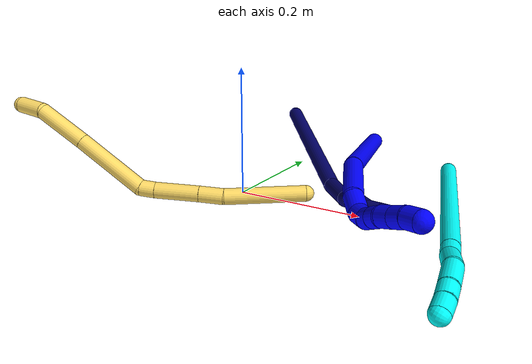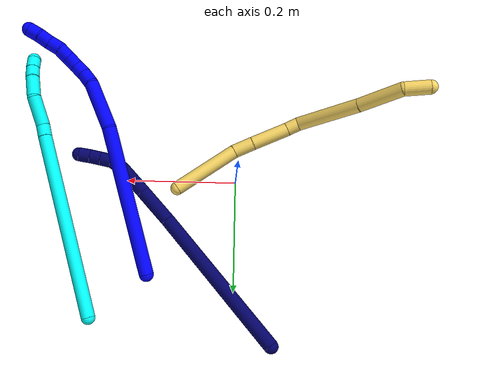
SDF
<sdf version="1.7">
 <world name="default">
  <model name="1">
   <static>0</static>
   <link name="1">
    <collision name="collision-cylinder-e_1_1_4">
     <pose>0.00447 -0.000482 0.129517 0.003721 0.034496 6.4e-05</pose>
     <geometry><cylinder><radius>0.0125</radius><length>0.25919</length></cylinder></geometry>
     <surface>
      <friction><ode><mu>1.16</mu><mu2>1.16</mu2><slip1>0</slip1><slip2>0</slip2></ode></friction>
      <contact><ode><kp>1e+06</kp><kd>1</kd><max_vel>0</max_vel><min_depth>0.001</min_depth></ode></contact>
     </surface>
    </collision>
    <visual name="visual-cylinder-e_1_1_4">
     <pose>0.00447 -0.000482 0.129517 0.003721 0.034496 6.4e-05</pose>
     <geometry><cylinder><radius>0.0125</radius><length>0.25919</length></cylinder></geometry>
     <material><ambient>0 0 1 1</ambient></material>
    </visual>
    <collision name="collision-cylinder-e_2_4_5">
     <pose>0.012758 -0.013114 0.3022 0.274367 0.084952 0.011735</pose>
     <geometry><cylinder><radius>0.0125</radius><length>0.090011</length></cylinder></geometry>
     <surface>
      <friction><ode><mu>1.16</mu><mu2>1.16</mu2><slip1>0</slip1><slip2>0</slip2></ode></friction>
      <contact><ode><kp>1e+06</kp><kd>1</kd><max_vel>0</max_vel><min_depth>0.001</min_depth></ode></contact>
     </surface>
    </collision>
    <visual name="visual-cylinder-e_2_4_5">
     <pose>0.012758 -0.013114 0.3022 0.274367 0.084952 0.011735</pose>
     <geometry><cylinder><radius>0.0125</radius><length>0.090011</length></cylinder></geometry>
     <material><ambient>0 0 1 1</ambient></material>
    </visual>
    <collision name="collision-cylinder-e_3_5_6">
     <pose>0.019145 -0.033209 0.356955 0.600998 0.180781 0.056159</pose>
     <geometry><cylinder><radius>0.0125</radius><length>0.028568</length></cylinder></geometry>
     <surface>
      <friction><ode><mu>1.16</mu><mu2>1.16</mu2><slip1>0</slip1><slip2>0</slip2></ode></friction>
      <contact><ode><kp>1e+06</kp><kd>1</kd><max_vel>0</max_vel><min_depth>0.001</min_depth></ode></contact>
     </surface>
    </collision>
    <visual name="visual-cylinder-e_3_5_6">
     <pose>0.019145 -0.033209 0.356955 0.600998 0.180781 0.056159</pose>
     <geometry><cylinder><radius>0.0125</radius><length>0.028568</length></cylinder></geometry>
     <material><ambient>0 0 1 1</ambient></material>
    </visual>
    <collision name="collision-cylinder-e_4_6_7">
     <pose>0.026951 -0.04354 0.377839 0.251277 0.499605 0.064426</pose>
     <geometry><cylinder><radius>0.0125</radius><length>0.021866</length></cylinder></geometry>
     <surface>
      <friction><ode><mu>1.16</mu><mu2>1.16</mu2><slip1>0</slip1><slip2>0</slip2></ode></friction>
      <contact><ode><kp>1e+06</kp><kd>1</kd><max_vel>0</max_vel><min_depth>0.001</min_depth></ode></contact>
     </surface>
    </collision>
    <visual name="visual-cylinder-e_4_6_7">
     <pose>0.026951 -0.04354 0.377839 0.251277 0.499605 0.064426</pose>
     <geometry><cylinder><radius>0.0125</radius><length>0.021866</length></cylinder></geometry>
     <material><ambient>0 0 1 1</ambient></material>
    </visual>
    <collision name="collision-cylinder-e_5_7_8">
     <pose>0.038068 -0.044754 0.395339 -0.141891 0.616997 -0.045285</pose>
     <geometry><cylinder><radius>0.0125</radius><length>0.020324</length></cylinder></geometry>
     <surface>
      <friction><ode><mu>1.16</mu><mu2>1.16</mu2><slip1>0</slip1><slip2>0</slip2></ode></friction>
      <contact><ode><kp>1e+06</kp><kd>1</kd><max_vel>0</max_vel><min_depth>0.001</min_depth></ode></contact>
     </surface>
    </collision>
    <visual name="visual-cylinder-e_5_7_8">
     <pose>0.038068 -0.044754 0.395339 -0.141891 0.616997 -0.045285</pose>
     <geometry><cylinder><radius>0.0125</radius><length>0.020324</length></cylinder></geometry>
     <material><ambient>0 0 1 1</ambient></material>
    </visual>
    <collision name="collision-cylinder-e_6_8_9">
     <pose>0.049811 -0.0425 0.411586 -0.133756 0.625726 -0.043326</pose>
     <geometry><cylinder><radius>0.0125</radius><length>0.020021</length></cylinder></geometry>
     <surface>
      <friction><ode><mu>1.16</mu><mu2>1.16</mu2><slip1>0</slip1><slip2>0</slip2></ode></friction>
      <contact><ode><kp>1e+06</kp><kd>1</kd><max_vel>0</max_vel><min_depth>0.001</min_depth></ode></contact>
     </surface>
    </collision>
    <visual name="visual-cylinder-e_6_8_9">
     <pose>0.049811 -0.0425 0.411586 -0.133756 0.625726 -0.043326</pose>
     <geometry><cylinder><radius>0.0125</radius><length>0.020021</length></cylinder></geometry>
     <material><ambient>0 0 1 1</ambient></material>
    </visual>
    <collision name="collision-cylinder-e_7_9_10">
     <pose>0.063205 -0.042232 0.426165 0.123794 0.85214 0.056244</pose>
     <geometry><cylinder><radius>0.0125</radius><length>0.020012</length></cylinder></geometry>
     <surface>
      <friction><ode><mu>1.16</mu><mu2>1.16</mu2><slip1>0</slip1><slip2>0</slip2></ode></friction>
      <contact><ode><kp>1e+06</kp><kd>1</kd><max_vel>0</max_vel><min_depth>0.001</min_depth></ode></contact>
     </surface>
    </collision>
    <visual name="visual-cylinder-e_7_9_10">
     <pose>0.063205 -0.042232 0.426165 0.123794 0.85214 0.056244</pose>
     <geometry><cylinder><radius>0.0125</radius><length>0.020012</length></cylinder></geometry>
     <material><ambient>0 0 1 1</ambient></material>
    </visual>
    <collision name="collision-cylinder-e_8_10_11">
     <pose>0.077801 -0.043201 0.439781 0.022027 0.784204 0.009109</pose>
     <geometry><cylinder><radius>0.0125</radius><length>0.020005</length></cylinder></geometry>
     <surface>
      <friction><ode><mu>1.16</mu><mu2>1.16</mu2><slip1>0</slip1><slip2>0</slip2></ode></friction>
      <contact><ode><kp>1e+06</kp><kd>1</kd><max_vel>0</max_vel><min_depth>0.001</min_depth></ode></contact>
     </surface>
    </collision>
    <visual name="visual-cylinder-e_8_10_11">
     <pose>0.077801 -0.043201 0.439781 0.022027 0.784204 0.009109</pose>
     <geometry><cylinder><radius>0.0125</radius><length>0.020005</length></cylinder></geometry>
     <material><ambient>0 0 1 1</ambient></material>
    </visual>
    <collision name="collision-cylinder-e_9_11_2">
     <pose>0.091949 -0.045546 0.453574 0.31519 0.787059 0.131766</pose>
     <geometry><cylinder><radius>0.0125</radius><length>0.020003</length></cylinder></geometry>
     <surface>
      <friction><ode><mu>1.16</mu><mu2>1.16</mu2><slip1>0</slip1><slip2>0</slip2></ode></friction>
      <contact><ode><kp>1e+06</kp><kd>1</kd><max_vel>0</max_vel><min_depth>0.001</min_depth></ode></contact>
     </surface>
    </collision>
    <visual name="visual-cylinder-e_9_11_2">
     <pose>0.091949 -0.045546 0.453574 0.31519 0.787059 0.131766</pose>
     <geometry><cylinder><radius>0.0125</radius><length>0.020003</length></cylinder></geometry>
     <material><ambient>0 0 1 1</ambient></material>
    </visual>
    <collision name="collision-sphere-2">
     <pose>0.099033 -0.047735 0.460286 0 -0 0</pose>
     <geometry><sphere><radius>0.0125</radius></sphere></geometry>
     <surface>
      <friction><ode><mu>1.16</mu><mu2>1.16</mu2><slip1>0</slip1><slip2>0</slip2></ode></friction>
      <contact><ode><kp>1e+06</kp><kd>1</kd><max_vel>0</max_vel><min_depth>0.001</min_depth></ode></contact>
     </surface>
    </collision>
    <visual name="visual-sphere-2">
     <pose>0.099033 -0.047735 0.460286 0 -0 0</pose>
     <geometry><sphere><radius>0.0125</radius></sphere></geometry>
     <material><ambient>0 0 1 1</ambient></material>
    </visual>
    <collision name="collision-sphere-11">
     <pose>0.084866 -0.043357 0.446861 0 -0 0</pose>
     <geometry><sphere><radius>0.0125</radius></sphere></geometry>
     <surface>
      <friction><ode><mu>1.16</mu><mu2>1.16</mu2><slip1>0</slip1><slip2>0</slip2></ode></friction>
      <contact><ode><kp>1e+06</kp><kd>1</kd><max_vel>0</max_vel><min_depth>0.001</min_depth></ode></contact>
     </surface>
    </collision>
    <visual name="visual-sphere-11">
     <pose>0.084866 -0.043357 0.446861 0 -0 0</pose>
     <geometry><sphere><radius>0.0125</radius></sphere></geometry>
     <material><ambient>0 0 1 1</ambient></material>
    </visual>
    <collision name="collision-sphere-10">
     <pose>0.070737 -0.043045 0.432702 0 -0 0</pose>
     <geometry><sphere><radius>0.0125</radius></sphere></geometry>
     <surface>
      <friction><ode><mu>1.16</mu><mu2>1.16</mu2><slip1>0</slip1><slip2>0</slip2></ode></friction>
      <contact><ode><kp>1e+06</kp><kd>1</kd><max_vel>0</max_vel><min_depth>0.001</min_depth></ode></contact>
     </surface>
    </collision>
    <visual name="visual-sphere-10">
     <pose>0.070737 -0.043045 0.432702 0 -0 0</pose>
     <geometry><sphere><radius>0.0125</radius></sphere></geometry>
     <material><ambient>0 0 1 1</ambient></material>
    </visual>
    <collision name="collision-sphere-9">
     <pose>0.055674 -0.041418 0.419627 0 -0 0</pose>
     <geometry><sphere><radius>0.0125</radius></sphere></geometry>
     <surface>
      <friction><ode><mu>1.16</mu><mu2>1.16</mu2><slip1>0</slip1><slip2>0</slip2></ode></friction>
      <contact><ode><kp>1e+06</kp><kd>1</kd><max_vel>0</max_vel><min_depth>0.001</min_depth></ode></contact>
     </surface>
    </collision>
    <visual name="visual-sphere-9">
     <pose>0.055674 -0.041418 0.419627 0 -0 0</pose>
     <geometry><sphere><radius>0.0125</radius></sphere></geometry>
     <material><ambient>0 0 1 1</ambient></material>
    </visual>
    <collision name="collision-sphere-4">
     <pose>0.008939 -0.000964 0.259034 0 -0 0</pose>
     <geometry><sphere><radius>0.0125</radius></sphere></geometry>
     <surface>
      <friction><ode><mu>1.16</mu><mu2>1.16</mu2><slip1>0</slip1><slip2>0</slip2></ode></friction>
      <contact><ode><kp>1e+06</kp><kd>1</kd><max_vel>0</max_vel><min_depth>0.001</min_depth></ode></contact>
     </surface>
    </collision>
    <visual name="visual-sphere-4">
     <pose>0.008939 -0.000964 0.259034 0 -0 0</pose>
     <geometry><sphere><radius>0.0125</radius></sphere></geometry>
     <material><ambient>0 0 1 1</ambient></material>
    </visual>
    <collision name="collision-sphere-1">
     <geometry><sphere><radius>0.0125</radius></sphere></geometry>
     <surface>
      <friction><ode><mu>1.16</mu><mu2>1.16</mu2><slip1>0</slip1><slip2>0</slip2></ode></friction>
      <contact><ode><kp>1e+06</kp><kd>1</kd><max_vel>0</max_vel><min_depth>0.001</min_depth></ode></contact>
     </surface>
    </collision>
    <visual name="visual-sphere-1">
     <geometry><sphere><radius>0.0125</radius></sphere></geometry>
     <material><ambient>0 0 1 1</ambient></material>
    </visual>
    <collision name="collision-sphere-8">
     <pose>0.043948 -0.043582 0.403544 0 -0 0</pose>
     <geometry><sphere><radius>0.0125</radius></sphere></geometry>
     <surface>
      <friction><ode><mu>1.16</mu><mu2>1.16</mu2><slip1>0</slip1><slip2>0</slip2></ode></friction>
      <contact><ode><kp>1e+06</kp><kd>1</kd><max_vel>0</max_vel><min_depth>0.001</min_depth></ode></contact>
     </surface>
    </collision>
    <visual name="visual-sphere-8">
     <pose>0.043948 -0.043582 0.403544 0 -0 0</pose>
     <geometry><sphere><radius>0.0125</radius></sphere></geometry>
     <material><ambient>0 0 1 1</ambient></material>
    </visual>
    <collision name="collision-sphere-5">
     <pose>0.016577 -0.025263 0.345366 0 -0 0</pose>
     <geometry><sphere><radius>0.0125</radius></sphere></geometry>
     <surface>
      <friction><ode><mu>1.16</mu><mu2>1.16</mu2><slip1>0</slip1><slip2>0</slip2></ode></friction>
      <contact><ode><kp>1e+06</kp><kd>1</kd><max_vel>0</max_vel><min_depth>0.001</min_depth></ode></contact>
     </surface>
    </collision>
    <visual name="visual-sphere-5">
     <pose>0.016577 -0.025263 0.345366 0 -0 0</pose>
     <geometry><sphere><radius>0.0125</radius></sphere></geometry>
     <material><ambient>0 0 1 1</ambient></material>
    </visual>
    <collision name="collision-sphere-6">
     <pose>0.021713 -0.041154 0.368544 0 -0 0</pose>
     <geometry><sphere><radius>0.0125</radius></sphere></geometry>
     <surface>
      <friction><ode><mu>1.16</mu><mu2>1.16</mu2><slip1>0</slip1><slip2>0</slip2></ode></friction>
      <contact><ode><kp>1e+06</kp><kd>1</kd><max_vel>0</max_vel><min_depth>0.001</min_depth></ode></contact>
     </surface>
    </collision>
    <visual name="visual-sphere-6">
     <pose>0.021713 -0.041154 0.368544 0 -0 0</pose>
     <geometry><sphere><radius>0.0125</radius></sphere></geometry>
     <material><ambient>0 0 1 1</ambient></material>
    </visual>
    <collision name="collision-sphere-7">
     <pose>0.032188 -0.045927 0.387134 0 -0 0</pose>
     <geometry><sphere><radius>0.0125</radius></sphere></geometry>
     <surface>
      <friction><ode><mu>1.16</mu><mu2>1.16</mu2><slip1>0</slip1><slip2>0</slip2></ode></friction>
      <contact><ode><kp>1e+06</kp><kd>1</kd><max_vel>0</max_vel><min_depth>0.001</min_depth></ode></contact>
     </surface>
    </collision>
    <visual name="visual-sphere-7">
     <pose>0.032188 -0.045927 0.387134 0 -0 0</pose>
     <geometry><sphere><radius>0.0125</radius></sphere></geometry>
     <material><ambient>0 0 1 1</ambient></material>
    </visual>
    <inertial>
     <pose>0.019749 -0.015174 0.243809 0 -0 0</pose>
     <mass>0.5</mass>
     <inertia><ixx>0.001543</ixx><ixy>0</ixy><ixz>0</ixz><iyy>0.001532</iyy><iyz>0</iyz><izz>-1e-06</izz></inertia>
    </inertial>
   </link>
   <pose>0.149999 0.173331 0.066318 1.44043 -0.37598 0.294146</pose>
  </model>
  <model name="3">
   <static>0</static>
   <link name="3">
    <collision name="collision-cylinder-e_1_1_4">
     <pose>-0.015873 -0.158498 0.060982 1.20351 -0.093195 -0.064023</pose>
     <geometry><cylinder><radius>0.0125</radius><length>0.341129</length></cylinder></geometry>
     <surface>
      <friction><ode><mu>1.16</mu><mu2>1.16</mu2><slip1>0</slip1><slip2>0</slip2></ode></friction>
      <contact><ode><kp>1e+06</kp><kd>1</kd><max_vel>0</max_vel><min_depth>0.001</min_depth></ode></contact>
     </surface>
    </collision>
    <visual name="visual-cylinder-e_1_1_4">
     <pose>-0.015873 -0.158498 0.060982 1.20351 -0.093195 -0.064023</pose>
     <geometry><cylinder><radius>0.0125</radius><length>0.341129</length></cylinder></geometry>
     <material><ambient>0.003922 1 0.996078 1</ambient></material>
    </visual>
    <collision name="collision-cylinder-e_2_4_5">
     <pose>-0.032137 -0.327615 0.125755 1.22786 -0.034684 -0.024446</pose>
     <geometry><cylinder><radius>0.0125</radius><length>0.022564</length></cylinder></geometry>
     <surface>
      <friction><ode><mu>1.16</mu><mu2>1.16</mu2><slip1>0</slip1><slip2>0</slip2></ode></friction>
      <contact><ode><kp>1e+06</kp><kd>1</kd><max_vel>0</max_vel><min_depth>0.001</min_depth></ode></contact>
     </surface>
    </collision>
    <visual name="visual-cylinder-e_2_4_5">
     <pose>-0.032137 -0.327615 0.125755 1.22786 -0.034684 -0.024446</pose>
     <geometry><cylinder><radius>0.0125</radius><length>0.022564</length></cylinder></geometry>
     <material><ambient>0.003922 1 0.996078 1</ambient></material>
    </visual>
    <collision name="collision-cylinder-e_3_5_6">
     <pose>-0.040618 -0.363159 0.138436 1.2282 -0.296689 -0.209952</pose>
     <geometry><cylinder><radius>0.0125</radius><length>0.055344</length></cylinder></geometry>
     <surface>
      <friction><ode><mu>1.16</mu><mu2>1.16</mu2><slip1>0</slip1><slip2>0</slip2></ode></friction>
      <contact><ode><kp>1e+06</kp><kd>1</kd><max_vel>0</max_vel><min_depth>0.001</min_depth></ode></contact>
     </surface>
    </collision>
    <visual name="visual-cylinder-e_3_5_6">
     <pose>-0.040618 -0.363159 0.138436 1.2282 -0.296689 -0.209952</pose>
     <geometry><cylinder><radius>0.0125</radius><length>0.055344</length></cylinder></geometry>
     <material><ambient>0.003922 1 0.996078 1</ambient></material>
    </visual>
    <collision name="collision-cylinder-e_4_6_7">
     <pose>-0.047264 -0.406798 0.152992 1.27679 0.073743 0.054732</pose>
     <geometry><cylinder><radius>0.0125</radius><length>0.039214</length></cylinder></geometry>
     <surface>
      <friction><ode><mu>1.16</mu><mu2>1.16</mu2><slip1>0</slip1><slip2>0</slip2></ode></friction>
      <contact><ode><kp>1e+06</kp><kd>1</kd><max_vel>0</max_vel><min_depth>0.001</min_depth></ode></contact>
     </surface>
    </collision>
    <visual name="visual-cylinder-e_4_6_7">
     <pose>-0.047264 -0.406798 0.152992 1.27679 0.073743 0.054732</pose>
     <geometry><cylinder><radius>0.0125</radius><length>0.039214</length></cylinder></geometry>
     <material><ambient>0.003922 1 0.996078 1</ambient></material>
    </visual>
    <collision name="collision-cylinder-e_5_7_8">
     <pose>-0.043515 -0.435173 0.161645 1.27091 0.224036 0.165543</pose>
     <geometry><cylinder><radius>0.0125</radius><length>0.020741</length></cylinder></geometry>
     <surface>
      <friction><ode><mu>1.16</mu><mu2>1.16</mu2><slip1>0</slip1><slip2>0</slip2></ode></friction>
      <contact><ode><kp>1e+06</kp><kd>1</kd><max_vel>0</max_vel><min_depth>0.001</min_depth></ode></contact>
     </surface>
    </collision>
    <visual name="visual-cylinder-e_5_7_8">
     <pose>-0.043515 -0.435173 0.161645 1.27091 0.224036 0.165543</pose>
     <geometry><cylinder><radius>0.0125</radius><length>0.020741</length></cylinder></geometry>
     <material><ambient>0.003922 1 0.996078 1</ambient></material>
    </visual>
    <collision name="collision-cylinder-e_6_8_2">
     <pose>-0.037979 -0.454568 0.166894 1.34254 0.312788 0.249203</pose>
     <geometry><cylinder><radius>0.0125</radius><length>0.021007</length></cylinder></geometry>
     <surface>
      <friction><ode><mu>1.16</mu><mu2>1.16</mu2><slip1>0</slip1><slip2>0</slip2></ode></friction>
      <contact><ode><kp>1e+06</kp><kd>1</kd><max_vel>0</max_vel><min_depth>0.001</min_depth></ode></contact>
     </surface>
    </collision>
    <visual name="visual-cylinder-e_6_8_2">
     <pose>-0.037979 -0.454568 0.166894 1.34254 0.312788 0.249203</pose>
     <geometry><cylinder><radius>0.0125</radius><length>0.021007</length></cylinder></geometry>
     <material><ambient>0.003922 1 0.996078 1</ambient></material>
    </visual>
    <collision name="collision-sphere-2">
     <pose>-0.034747 -0.464303 0.169155 0 -0 0</pose>
     <geometry><sphere><radius>0.0125</radius></sphere></geometry>
     <surface>
      <friction><ode><mu>1.16</mu><mu2>1.16</mu2><slip1>0</slip1><slip2>0</slip2></ode></friction>
      <contact><ode><kp>1e+06</kp><kd>1</kd><max_vel>0</max_vel><min_depth>0.001</min_depth></ode></contact>
     </surface>
    </collision>
    <visual name="visual-sphere-2">
     <pose>-0.034747 -0.464303 0.169155 0 -0 0</pose>
     <geometry><sphere><radius>0.0125</radius></sphere></geometry>
     <material><ambient>0.003922 1 0.996078 1</ambient></material>
    </visual>
    <collision name="collision-sphere-4">
     <pose>-0.031746 -0.316996 0.121963 0 -0 0</pose>
     <geometry><sphere><radius>0.0125</radius></sphere></geometry>
     <surface>
      <friction><ode><mu>1.16</mu><mu2>1.16</mu2><slip1>0</slip1><slip2>0</slip2></ode></friction>
      <contact><ode><kp>1e+06</kp><kd>1</kd><max_vel>0</max_vel><min_depth>0.001</min_depth></ode></contact>
     </surface>
    </collision>
    <visual name="visual-sphere-4">
     <pose>-0.031746 -0.316996 0.121963 0 -0 0</pose>
     <geometry><sphere><radius>0.0125</radius></sphere></geometry>
     <material><ambient>0.003922 1 0.996078 1</ambient></material>
    </visual>
    <collision name="collision-sphere-1">
     <geometry><sphere><radius>0.0125</radius></sphere></geometry>
     <surface>
      <friction><ode><mu>1.16</mu><mu2>1.16</mu2><slip1>0</slip1><slip2>0</slip2></ode></friction>
      <contact><ode><kp>1e+06</kp><kd>1</kd><max_vel>0</max_vel><min_depth>0.001</min_depth></ode></contact>
     </surface>
    </collision>
    <visual name="visual-sphere-1">
     <geometry><sphere><radius>0.0125</radius></sphere></geometry>
     <material><ambient>0.003922 1 0.996078 1</ambient></material>
    </visual>
    <collision name="collision-sphere-8">
     <pose>-0.041211 -0.444833 0.164632 0 -0 0</pose>
     <geometry><sphere><radius>0.0125</radius></sphere></geometry>
     <surface>
      <friction><ode><mu>1.16</mu><mu2>1.16</mu2><slip1>0</slip1><slip2>0</slip2></ode></friction>
      <contact><ode><kp>1e+06</kp><kd>1</kd><max_vel>0</max_vel><min_depth>0.001</min_depth></ode></contact>
     </surface>
    </collision>
    <visual name="visual-sphere-8">
     <pose>-0.041211 -0.444833 0.164632 0 -0 0</pose>
     <geometry><sphere><radius>0.0125</radius></sphere></geometry>
     <material><ambient>0.003922 1 0.996078 1</ambient></material>
    </visual>
    <collision name="collision-sphere-5">
     <pose>-0.032528 -0.338233 0.129546 0 -0 0</pose>
     <geometry><sphere><radius>0.0125</radius></sphere></geometry>
     <surface>
      <friction><ode><mu>1.16</mu><mu2>1.16</mu2><slip1>0</slip1><slip2>0</slip2></ode></friction>
      <contact><ode><kp>1e+06</kp><kd>1</kd><max_vel>0</max_vel><min_depth>0.001</min_depth></ode></contact>
     </surface>
    </collision>
    <visual name="visual-sphere-5">
     <pose>-0.032528 -0.338233 0.129546 0 -0 0</pose>
     <geometry><sphere><radius>0.0125</radius></sphere></geometry>
     <material><ambient>0.003922 1 0.996078 1</ambient></material>
    </visual>
    <collision name="collision-sphere-6">
     <pose>-0.048708 -0.388084 0.147326 0 -0 0</pose>
     <geometry><sphere><radius>0.0125</radius></sphere></geometry>
     <surface>
      <friction><ode><mu>1.16</mu><mu2>1.16</mu2><slip1>0</slip1><slip2>0</slip2></ode></friction>
      <contact><ode><kp>1e+06</kp><kd>1</kd><max_vel>0</max_vel><min_depth>0.001</min_depth></ode></contact>
     </surface>
    </collision>
    <visual name="visual-sphere-6">
     <pose>-0.048708 -0.388084 0.147326 0 -0 0</pose>
     <geometry><sphere><radius>0.0125</radius></sphere></geometry>
     <material><ambient>0.003922 1 0.996078 1</ambient></material>
    </visual>
    <collision name="collision-sphere-7">
     <pose>-0.045819 -0.425513 0.158658 0 -0 0</pose>
     <geometry><sphere><radius>0.0125</radius></sphere></geometry>
     <surface>
      <friction><ode><mu>1.16</mu><mu2>1.16</mu2><slip1>0</slip1><slip2>0</slip2></ode></friction>
      <contact><ode><kp>1e+06</kp><kd>1</kd><max_vel>0</max_vel><min_depth>0.001</min_depth></ode></contact>
     </surface>
    </collision>
    <visual name="visual-sphere-7">
     <pose>-0.045819 -0.425513 0.158658 0 -0 0</pose>
     <geometry><sphere><radius>0.0125</radius></sphere></geometry>
     <material><ambient>0.003922 1 0.996078 1</ambient></material>
    </visual>
    <inertial>
     <pose>-0.023883 -0.232173 0.08832 0 -0 0</pose>
     <mass>0.5</mass>
     <inertia>
      <ixx>0.00311</ixx>
      <ixy>0</ixy>
      <ixz>0</ixz>
      <iyy>0.000968</iyy>
      <iyz>0</iyz>
      <izz>0.003438</izz>
     </inertia>
    </inertial>
   </link>
   <pose>0.256307 0.250161 0.011496 -3.02537 1.28169 -3.11535</pose>
  </model>
  <model name="5">
   <static>0</static>
   <link name="5">
    <collision name="collision-cylinder-e_1_1_4">
     <pose>-0.003981 -0.030433 0.054629 0.50827 -0.063577 -0.016519</pose>
     <geometry><cylinder><radius>0.0125</radius><length>0.125321</length></cylinder></geometry>
     <surface>
      <friction><ode><mu>1.16</mu><mu2>1.16</mu2><slip1>0</slip1><slip2>0</slip2></ode></friction>
      <contact><ode><kp>1e+06</kp><kd>1</kd><max_vel>0</max_vel><min_depth>0.001</min_depth></ode></contact>
     </surface>
    </collision>
    <visual name="visual-cylinder-e_1_1_4">
     <pose>-0.003981 -0.030433 0.054629 0.50827 -0.063577 -0.016519</pose>
     <geometry><cylinder><radius>0.0125</radius><length>0.125321</length></cylinder></geometry>
     <material><ambient>1 0.858824 0.4 1</ambient></material>
    </visual>
    <collision name="collision-cylinder-e_2_4_5">
     <pose>-0.011053 -0.072701 0.123631 0.688835 -0.164537 -0.059138</pose>
     <geometry><cylinder><radius>0.0125</radius><length>0.037746</length></cylinder></geometry>
     <surface>
      <friction><ode><mu>1.16</mu><mu2>1.16</mu2><slip1>0</slip1><slip2>0</slip2></ode></friction>
      <contact><ode><kp>1e+06</kp><kd>1</kd><max_vel>0</max_vel><min_depth>0.001</min_depth></ode></contact>
     </surface>
    </collision>
    <visual name="visual-cylinder-e_2_4_5">
     <pose>-0.011053 -0.072701 0.123631 0.688835 -0.164537 -0.059138</pose>
     <geometry><cylinder><radius>0.0125</radius><length>0.037746</length></cylinder></geometry>
     <material><ambient>1 0.858824 0.4 1</ambient></material>
    </visual>
    <collision name="collision-cylinder-e_3_5_6">
     <pose>-0.018893 -0.106574 0.164009 0.703023 -0.138412 -0.050832</pose>
     <geometry><cylinder><radius>0.0125</radius><length>0.068835</length></cylinder></geometry>
     <surface>
      <friction><ode><mu>1.16</mu><mu2>1.16</mu2><slip1>0</slip1><slip2>0</slip2></ode></friction>
      <contact><ode><kp>1e+06</kp><kd>1</kd><max_vel>0</max_vel><min_depth>0.001</min_depth></ode></contact>
     </surface>
    </collision>
    <visual name="visual-cylinder-e_3_5_6">
     <pose>-0.018893 -0.106574 0.164009 0.703023 -0.138412 -0.050832</pose>
     <geometry><cylinder><radius>0.0125</radius><length>0.068835</length></cylinder></geometry>
     <material><ambient>1 0.858824 0.4 1</ambient></material>
    </visual>
    <collision name="collision-cylinder-e_4_6_7">
     <pose>-0.026246 -0.135707 0.199084 0.663787 -0.22245 -0.076945</pose>
     <geometry><cylinder><radius>0.0125</radius><length>0.02361</length></cylinder></geometry>
     <surface>
      <friction><ode><mu>1.16</mu><mu2>1.16</mu2><slip1>0</slip1><slip2>0</slip2></ode></friction>
      <contact><ode><kp>1e+06</kp><kd>1</kd><max_vel>0</max_vel><min_depth>0.001</min_depth></ode></contact>
     </surface>
    </collision>
    <visual name="visual-cylinder-e_4_6_7">
     <pose>-0.026246 -0.135707 0.199084 0.663787 -0.22245 -0.076945</pose>
     <geometry><cylinder><radius>0.0125</radius><length>0.02361</length></cylinder></geometry>
     <material><ambient>1 0.858824 0.4 1</ambient></material>
    </visual>
    <collision name="collision-cylinder-e_5_7_8">
     <pose>-0.065946 -0.179754 0.236443 0.917417 -0.672959 -0.342097</pose>
     <geometry><cylinder><radius>0.0125</radius><length>0.119026</length></cylinder></geometry>
     <surface>
      <friction><ode><mu>1.16</mu><mu2>1.16</mu2><slip1>0</slip1><slip2>0</slip2></ode></friction>
      <contact><ode><kp>1e+06</kp><kd>1</kd><max_vel>0</max_vel><min_depth>0.001</min_depth></ode></contact>
     </surface>
    </collision>
    <visual name="visual-cylinder-e_5_7_8">
     <pose>-0.065946 -0.179754 0.236443 0.917417 -0.672959 -0.342097</pose>
     <geometry><cylinder><radius>0.0125</radius><length>0.119026</length></cylinder></geometry>
     <material><ambient>1 0.858824 0.4 1</ambient></material>
    </visual>
    <collision name="collision-cylinder-e_6_8_9">
     <pose>-0.128379 -0.240338 0.285359 0.853182 -0.679479 -0.31856</pose>
     <geometry><cylinder><radius>0.0125</radius><length>0.080646</length></cylinder></geometry>
     <surface>
      <friction><ode><mu>1.16</mu><mu2>1.16</mu2><slip1>0</slip1><slip2>0</slip2></ode></friction>
      <contact><ode><kp>1e+06</kp><kd>1</kd><max_vel>0</max_vel><min_depth>0.001</min_depth></ode></contact>
     </surface>
    </collision>
    <visual name="visual-cylinder-e_6_8_9">
     <pose>-0.128379 -0.240338 0.285359 0.853182 -0.679479 -0.31856</pose>
     <geometry><cylinder><radius>0.0125</radius><length>0.080646</length></cylinder></geometry>
     <material><ambient>1 0.858824 0.4 1</ambient></material>
    </visual>
    <collision name="collision-cylinder-e_7_9_2">
     <pose>-0.158838 -0.282983 0.31668 1.05846 -0.230548 -0.135237</pose>
     <geometry><cylinder><radius>0.0125</radius><length>0.044816</length></cylinder></geometry>
     <surface>
      <friction><ode><mu>1.16</mu><mu2>1.16</mu2><slip1>0</slip1><slip2>0</slip2></ode></friction>
      <contact><ode><kp>1e+06</kp><kd>1</kd><max_vel>0</max_vel><min_depth>0.001</min_depth></ode></contact>
     </surface>
    </collision>
    <visual name="visual-cylinder-e_7_9_2">
     <pose>-0.158838 -0.282983 0.31668 1.05846 -0.230548 -0.135237</pose>
     <geometry><cylinder><radius>0.0125</radius><length>0.044816</length></cylinder></geometry>
     <material><ambient>1 0.858824 0.4 1</ambient></material>
    </visual>
    <collision name="collision-sphere-2">
     <pose>-0.163958 -0.301997 0.327374 0 -0 0</pose>
     <geometry><sphere><radius>0.0125</radius></sphere></geometry>
     <surface>
      <friction><ode><mu>1.16</mu><mu2>1.16</mu2><slip1>0</slip1><slip2>0</slip2></ode></friction>
      <contact><ode><kp>1e+06</kp><kd>1</kd><max_vel>0</max_vel><min_depth>0.001</min_depth></ode></contact>
     </surface>
    </collision>
    <visual name="visual-sphere-2">
     <pose>-0.163958 -0.301997 0.327374 0 -0 0</pose>
     <geometry><sphere><radius>0.0125</radius></sphere></geometry>
     <material><ambient>1 0.858824 0.4 1</ambient></material>
    </visual>
    <collision name="collision-sphere-9">
     <pose>-0.153717 -0.263969 0.305986 0 -0 0</pose>
     <geometry><sphere><radius>0.0125</radius></sphere></geometry>
     <surface>
      <friction><ode><mu>1.16</mu><mu2>1.16</mu2><slip1>0</slip1><slip2>0</slip2></ode></friction>
      <contact><ode><kp>1e+06</kp><kd>1</kd><max_vel>0</max_vel><min_depth>0.001</min_depth></ode></contact>
     </surface>
    </collision>
    <visual name="visual-sphere-9">
     <pose>-0.153717 -0.263969 0.305986 0 -0 0</pose>
     <geometry><sphere><radius>0.0125</radius></sphere></geometry>
     <material><ambient>1 0.858824 0.4 1</ambient></material>
    </visual>
    <collision name="collision-sphere-4">
     <pose>-0.007962 -0.060866 0.109258 0 -0 0</pose>
     <geometry><sphere><radius>0.0125</radius></sphere></geometry>
     <surface>
      <friction><ode><mu>1.16</mu><mu2>1.16</mu2><slip1>0</slip1><slip2>0</slip2></ode></friction>
      <contact><ode><kp>1e+06</kp><kd>1</kd><max_vel>0</max_vel><min_depth>0.001</min_depth></ode></contact>
     </surface>
    </collision>
    <visual name="visual-sphere-4">
     <pose>-0.007962 -0.060866 0.109258 0 -0 0</pose>
     <geometry><sphere><radius>0.0125</radius></sphere></geometry>
     <material><ambient>1 0.858824 0.4 1</ambient></material>
    </visual>
    <collision name="collision-sphere-1">
     <geometry><sphere><radius>0.0125</radius></sphere></geometry>
     <surface>
      <friction><ode><mu>1.16</mu><mu2>1.16</mu2><slip1>0</slip1><slip2>0</slip2></ode></friction>
      <contact><ode><kp>1e+06</kp><kd>1</kd><max_vel>0</max_vel><min_depth>0.001</min_depth></ode></contact>
     </surface>
    </collision>
    <visual name="visual-sphere-1">
     <geometry><sphere><radius>0.0125</radius></sphere></geometry>
     <material><ambient>1 0.858824 0.4 1</ambient></material>
    </visual>
    <collision name="collision-sphere-8">
     <pose>-0.10304 -0.216707 0.264732 0 -0 0</pose>
     <geometry><sphere><radius>0.0125</radius></sphere></geometry>
     <surface>
      <friction><ode><mu>1.16</mu><mu2>1.16</mu2><slip1>0</slip1><slip2>0</slip2></ode></friction>
      <contact><ode><kp>1e+06</kp><kd>1</kd><max_vel>0</max_vel><min_depth>0.001</min_depth></ode></contact>
     </surface>
    </collision>
    <visual name="visual-sphere-8">
     <pose>-0.10304 -0.216707 0.264732 0 -0 0</pose>
     <geometry><sphere><radius>0.0125</radius></sphere></geometry>
     <material><ambient>1 0.858824 0.4 1</ambient></material>
    </visual>
    <collision name="collision-sphere-5">
     <pose>-0.014145 -0.084535 0.138004 0 -0 0</pose>
     <geometry><sphere><radius>0.0125</radius></sphere></geometry>
     <surface>
      <friction><ode><mu>1.16</mu><mu2>1.16</mu2><slip1>0</slip1><slip2>0</slip2></ode></friction>
      <contact><ode><kp>1e+06</kp><kd>1</kd><max_vel>0</max_vel><min_depth>0.001</min_depth></ode></contact>
     </surface>
    </collision>
    <visual name="visual-sphere-5">
     <pose>-0.014145 -0.084535 0.138004 0 -0 0</pose>
     <geometry><sphere><radius>0.0125</radius></sphere></geometry>
     <material><ambient>1 0.858824 0.4 1</ambient></material>
    </visual>
    <collision name="collision-sphere-6">
     <pose>-0.023642 -0.128613 0.190015 0 -0 0</pose>
     <geometry><sphere><radius>0.0125</radius></sphere></geometry>
     <surface>
      <friction><ode><mu>1.16</mu><mu2>1.16</mu2><slip1>0</slip1><slip2>0</slip2></ode></friction>
      <contact><ode><kp>1e+06</kp><kd>1</kd><max_vel>0</max_vel><min_depth>0.001</min_depth></ode></contact>
     </surface>
    </collision>
    <visual name="visual-sphere-6">
     <pose>-0.023642 -0.128613 0.190015 0 -0 0</pose>
     <geometry><sphere><radius>0.0125</radius></sphere></geometry>
     <material><ambient>1 0.858824 0.4 1</ambient></material>
    </visual>
    <collision name="collision-sphere-7">
     <pose>-0.028851 -0.142801 0.208153 0 -0 0</pose>
     <geometry><sphere><radius>0.0125</radius></sphere></geometry>
     <surface>
      <friction><ode><mu>1.16</mu><mu2>1.16</mu2><slip1>0</slip1><slip2>0</slip2></ode></friction>
      <contact><ode><kp>1e+06</kp><kd>1</kd><max_vel>0</max_vel><min_depth>0.001</min_depth></ode></contact>
     </surface>
    </collision>
    <visual name="visual-sphere-7">
     <pose>-0.028851 -0.142801 0.208153 0 -0 0</pose>
     <geometry><sphere><radius>0.0125</radius></sphere></geometry>
     <material><ambient>1 0.858824 0.4 1</ambient></material>
    </visual>
    <inertial>
     <pose>-0.056315 -0.141116 0.185702 0 -0 0</pose>
     <mass>0.5</mass>
     <inertia>
      <ixx>0.000288</ixx>
      <ixy>0</ixy>
      <ixz>0</ixz>
      <iyy>0.000246</iyy>
      <iyz>0</iyz>
      <izz>0.000395</izz>
     </inertia>
    </inertial>
   </link>
   <pose>0.106422 0.013868 0.014276 1.96644 1.46423 -0.053302</pose>
  </model>
  <model name="7">
   <static>0</static>
   <link name="7">
    <collision name="collision-cylinder-e_1_1_4">
     <pose>0.081942 -0.056735 -0.104506 2.64423 0.603365 1.77269</pose>
     <geometry><cylinder><radius>0.0125</radius><length>0.288824</length></cylinder></geometry>
     <surface>
      <friction><ode><mu>1.16</mu><mu2>1.16</mu2><slip1>0</slip1><slip2>0</slip2></ode></friction>
      <contact><ode><kp>1e+06</kp><kd>1</kd><max_vel>0</max_vel><min_depth>0.001</min_depth></ode></contact>
     </surface>
    </collision>
    <visual name="visual-cylinder-e_1_1_4">
     <pose>0.081942 -0.056735 -0.104506 2.64423 0.603365 1.77269</pose>
     <geometry><cylinder><radius>0.0125</radius><length>0.288824</length></cylinder></geometry>
     <material><ambient>0.003922 0 0.403922 1</ambient></material>
    </visual>
    <collision name="collision-cylinder-e_2_4_5">
     <pose>0.178186 -0.124094 -0.239259 2.8038 0.419646 1.79122</pose>
     <geometry><cylinder><radius>0.0125</radius><length>0.070209</length></cylinder></geometry>
     <surface>
      <friction><ode><mu>1.16</mu><mu2>1.16</mu2><slip1>0</slip1><slip2>0</slip2></ode></friction>
      <contact><ode><kp>1e+06</kp><kd>1</kd><max_vel>0</max_vel><min_depth>0.001</min_depth></ode></contact>
     </surface>
    </collision>
    <visual name="visual-cylinder-e_2_4_5">
     <pose>0.178186 -0.124094 -0.239259 2.8038 0.419646 1.79122</pose>
     <geometry><cylinder><radius>0.0125</radius><length>0.070209</length></cylinder></geometry>
     <material><ambient>0.003922 0 0.403922 1</ambient></material>
    </visual>
    <collision name="collision-cylinder-e_3_5_6">
     <pose>0.198957 -0.139738 -0.295425 2.95029 0.240249 1.79839</pose>
     <geometry><cylinder><radius>0.0125</radius><length>0.054364</length></cylinder></geometry>
     <surface>
      <friction><ode><mu>1.16</mu><mu2>1.16</mu2><slip1>0</slip1><slip2>0</slip2></ode></friction>
      <contact><ode><kp>1e+06</kp><kd>1</kd><max_vel>0</max_vel><min_depth>0.001</min_depth></ode></contact>
     </surface>
    </collision>
    <visual name="visual-cylinder-e_3_5_6">
     <pose>0.198957 -0.139738 -0.295425 2.95029 0.240249 1.79839</pose>
     <geometry><cylinder><radius>0.0125</radius><length>0.054364</length></cylinder></geometry>
     <material><ambient>0.003922 0 0.403922 1</ambient></material>
    </visual>
    <collision name="collision-cylinder-e_4_6_7">
     <pose>0.20949 -0.151311 -0.331265 2.55787 0.329506 1.01088</pose>
     <geometry><cylinder><radius>0.0125</radius><length>0.02513</length></cylinder></geometry>
     <surface>
      <friction><ode><mu>1.16</mu><mu2>1.16</mu2><slip1>0</slip1><slip2>0</slip2></ode></friction>
      <contact><ode><kp>1e+06</kp><kd>1</kd><max_vel>0</max_vel><min_depth>0.001</min_depth></ode></contact>
     </surface>
    </collision>
    <visual name="visual-cylinder-e_4_6_7">
     <pose>0.20949 -0.151311 -0.331265 2.55787 0.329506 1.01088</pose>
     <geometry><cylinder><radius>0.0125</radius><length>0.02513</length></cylinder></geometry>
     <material><ambient>0.003922 0 0.403922 1</ambient></material>
    </visual>
    <collision name="collision-cylinder-e_5_7_8">
     <pose>0.213174 -0.165322 -0.348586 2.3523 -0.036299 -0.087109</pose>
     <geometry><cylinder><radius>0.0125</radius><length>0.021029</length></cylinder></geometry>
     <surface>
      <friction><ode><mu>1.16</mu><mu2>1.16</mu2><slip1>0</slip1><slip2>0</slip2></ode></friction>
      <contact><ode><kp>1e+06</kp><kd>1</kd><max_vel>0</max_vel><min_depth>0.001</min_depth></ode></contact>
     </surface>
    </collision>
    <visual name="visual-cylinder-e_5_7_8">
     <pose>0.213174 -0.165322 -0.348586 2.3523 -0.036299 -0.087109</pose>
     <geometry><cylinder><radius>0.0125</radius><length>0.021029</length></cylinder></geometry>
     <material><ambient>0.003922 0 0.403922 1</ambient></material>
    </visual>
    <collision name="collision-cylinder-e_6_8_9">
     <pose>0.212431 -0.179919 -0.363075 2.35261 -0.035986 -0.086395</pose>
     <geometry><cylinder><radius>0.0125</radius><length>0.020133</length></cylinder></geometry>
     <surface>
      <friction><ode><mu>1.16</mu><mu2>1.16</mu2><slip1>0</slip1><slip2>0</slip2></ode></friction>
      <contact><ode><kp>1e+06</kp><kd>1</kd><max_vel>0</max_vel><min_depth>0.001</min_depth></ode></contact>
     </surface>
    </collision>
    <visual name="visual-cylinder-e_6_8_9">
     <pose>0.212431 -0.179919 -0.363075 2.35261 -0.035986 -0.086395</pose>
     <geometry><cylinder><radius>0.0125</radius><length>0.020133</length></cylinder></geometry>
     <material><ambient>0.003922 0 0.403922 1</ambient></material>
    </visual>
    <collision name="collision-cylinder-e_7_9_2">
     <pose>0.21052 -0.193958 -0.377453 2.38369 -0.153047 -0.380446</pose>
     <geometry><cylinder><radius>0.0125</radius><length>0.020313</length></cylinder></geometry>
     <surface>
      <friction><ode><mu>1.16</mu><mu2>1.16</mu2><slip1>0</slip1><slip2>0</slip2></ode></friction>
      <contact><ode><kp>1e+06</kp><kd>1</kd><max_vel>0</max_vel><min_depth>0.001</min_depth></ode></contact>
     </surface>
    </collision>
    <visual name="visual-cylinder-e_7_9_2">
     <pose>0.21052 -0.193958 -0.377453 2.38369 -0.153047 -0.380446</pose>
     <geometry><cylinder><radius>0.0125</radius><length>0.020313</length></cylinder></geometry>
     <material><ambient>0.003922 0 0.403922 1</ambient></material>
    </visual>
    <collision name="collision-sphere-2">
     <pose>0.208972 -0.200858 -0.384743 0 -0 0</pose>
     <geometry><sphere><radius>0.0125</radius></sphere></geometry>
     <surface>
      <friction><ode><mu>1.16</mu><mu2>1.16</mu2><slip1>0</slip1><slip2>0</slip2></ode></friction>
      <contact><ode><kp>1e+06</kp><kd>1</kd><max_vel>0</max_vel><min_depth>0.001</min_depth></ode></contact>
     </surface>
    </collision>
    <visual name="visual-sphere-2">
     <pose>0.208972 -0.200858 -0.384743 0 -0 0</pose>
     <geometry><sphere><radius>0.0125</radius></sphere></geometry>
     <material><ambient>0.003922 0 0.403922 1</ambient></material>
    </visual>
    <collision name="collision-sphere-9">
     <pose>0.212068 -0.187058 -0.370163 0 -0 0</pose>
     <geometry><sphere><radius>0.0125</radius></sphere></geometry>
     <surface>
      <friction><ode><mu>1.16</mu><mu2>1.16</mu2><slip1>0</slip1><slip2>0</slip2></ode></friction>
      <contact><ode><kp>1e+06</kp><kd>1</kd><max_vel>0</max_vel><min_depth>0.001</min_depth></ode></contact>
     </surface>
    </collision>
    <visual name="visual-sphere-9">
     <pose>0.212068 -0.187058 -0.370163 0 -0 0</pose>
     <geometry><sphere><radius>0.0125</radius></sphere></geometry>
     <material><ambient>0.003922 0 0.403922 1</ambient></material>
    </visual>
    <collision name="collision-sphere-4">
     <pose>0.163883 -0.11347 -0.209012 0 -0 0</pose>
     <geometry><sphere><radius>0.0125</radius></sphere></geometry>
     <surface>
      <friction><ode><mu>1.16</mu><mu2>1.16</mu2><slip1>0</slip1><slip2>0</slip2></ode></friction>
      <contact><ode><kp>1e+06</kp><kd>1</kd><max_vel>0</max_vel><min_depth>0.001</min_depth></ode></contact>
     </surface>
    </collision>
    <visual name="visual-sphere-4">
     <pose>0.163883 -0.11347 -0.209012 0 -0 0</pose>
     <geometry><sphere><radius>0.0125</radius></sphere></geometry>
     <material><ambient>0.003922 0 0.403922 1</ambient></material>
    </visual>
    <collision name="collision-sphere-1">
     <geometry><sphere><radius>0.0125</radius></sphere></geometry>
     <surface>
      <friction><ode><mu>1.16</mu><mu2>1.16</mu2><slip1>0</slip1><slip2>0</slip2></ode></friction>
      <contact><ode><kp>1e+06</kp><kd>1</kd><max_vel>0</max_vel><min_depth>0.001</min_depth></ode></contact>
     </surface>
    </collision>
    <visual name="visual-sphere-1">
     <geometry><sphere><radius>0.0125</radius></sphere></geometry>
     <material><ambient>0.003922 0 0.403922 1</ambient></material>
    </visual>
    <collision name="collision-sphere-8">
     <pose>0.212793 -0.172781 -0.355987 0 -0 0</pose>
     <geometry><sphere><radius>0.0125</radius></sphere></geometry>
     <surface>
      <friction><ode><mu>1.16</mu><mu2>1.16</mu2><slip1>0</slip1><slip2>0</slip2></ode></friction>
      <contact><ode><kp>1e+06</kp><kd>1</kd><max_vel>0</max_vel><min_depth>0.001</min_depth></ode></contact>
     </surface>
    </collision>
    <visual name="visual-sphere-8">
     <pose>0.212793 -0.172781 -0.355987 0 -0 0</pose>
     <geometry><sphere><radius>0.0125</radius></sphere></geometry>
     <material><ambient>0.003922 0 0.403922 1</ambient></material>
    </visual>
    <collision name="collision-sphere-5">
     <pose>0.192489 -0.134718 -0.269506 0 -0 0</pose>
     <geometry><sphere><radius>0.0125</radius></sphere></geometry>
     <surface>
      <friction><ode><mu>1.16</mu><mu2>1.16</mu2><slip1>0</slip1><slip2>0</slip2></ode></friction>
      <contact><ode><kp>1e+06</kp><kd>1</kd><max_vel>0</max_vel><min_depth>0.001</min_depth></ode></contact>
     </surface>
    </collision>
    <visual name="visual-sphere-5">
     <pose>0.192489 -0.134718 -0.269506 0 -0 0</pose>
     <geometry><sphere><radius>0.0125</radius></sphere></geometry>
     <material><ambient>0.003922 0 0.403922 1</ambient></material>
    </visual>
    <collision name="collision-sphere-6">
     <pose>0.205424 -0.144758 -0.321345 0 -0 0</pose>
     <geometry><sphere><radius>0.0125</radius></sphere></geometry>
     <surface>
      <friction><ode><mu>1.16</mu><mu2>1.16</mu2><slip1>0</slip1><slip2>0</slip2></ode></friction>
      <contact><ode><kp>1e+06</kp><kd>1</kd><max_vel>0</max_vel><min_depth>0.001</min_depth></ode></contact>
     </surface>
    </collision>
    <visual name="visual-sphere-6">
     <pose>0.205424 -0.144758 -0.321345 0 -0 0</pose>
     <geometry><sphere><radius>0.0125</radius></sphere></geometry>
     <material><ambient>0.003922 0 0.403922 1</ambient></material>
    </visual>
    <collision name="collision-sphere-7">
     <pose>0.213556 -0.157863 -0.341186 0 -0 0</pose>
     <geometry><sphere><radius>0.0125</radius></sphere></geometry>
     <surface>
      <friction><ode><mu>1.16</mu><mu2>1.16</mu2><slip1>0</slip1><slip2>0</slip2></ode></friction>
      <contact><ode><kp>1e+06</kp><kd>1</kd><max_vel>0</max_vel><min_depth>0.001</min_depth></ode></contact>
     </surface>
    </collision>
    <visual name="visual-sphere-7">
     <pose>0.213556 -0.157863 -0.341186 0 -0 0</pose>
     <geometry><sphere><radius>0.0125</radius></sphere></geometry>
     <material><ambient>0.003922 0 0.403922 1</ambient></material>
    </visual>
    <inertial>
     <pose>0.130586 -0.095073 -0.187348 0 -0 0</pose>
     <mass>0.5</mass>
     <inertia>
      <ixx>0.001351</ixx>
      <ixy>0</ixy>
      <ixz>0</ixz>
      <iyy>0.002559</iyy>
      <iyz>0</iyz>
      <izz>-0.000383</izz>
     </inertia>
    </inertial>
   </link>
   <pose>-0.064015 0.287581 0.065584 2.37144 0.71197 -1.78401</pose>
  </model>
 </world>
</sdf>
